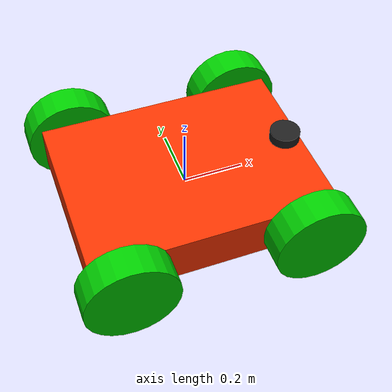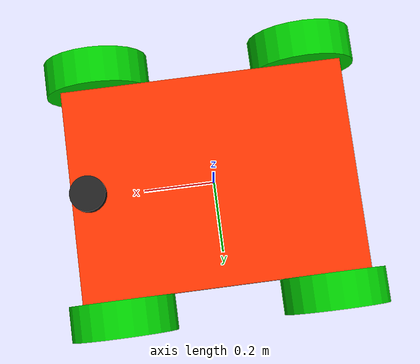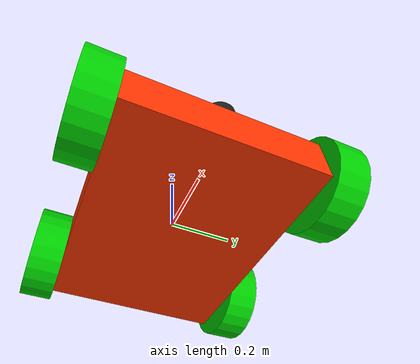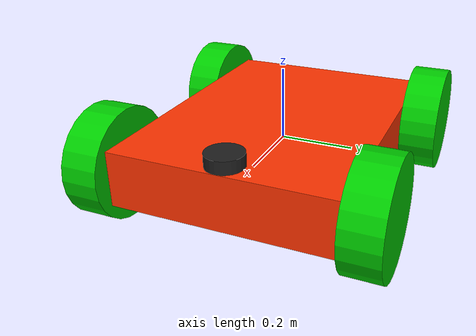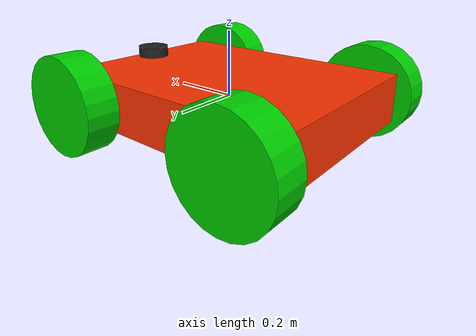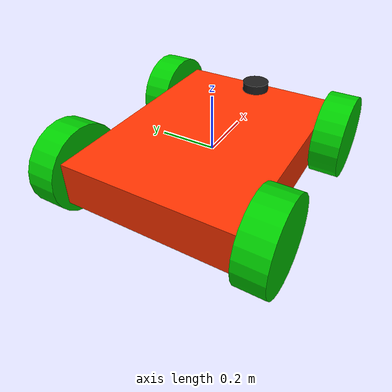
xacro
<?xml version = "1.0"?>
<robot name = "test" xmlns:xacro = "http://www.ros.org/wiki/xacro">

    <xacro:property name = "M_PI" value = "3.1415926"/>
    <xacro:property name = "base_mass" value="20"/>
    <xacro:property name = "base_box_length" value="0.8"/>
    <xacro:property name = "base_box_width" value="0.6"/>
    <xacro:property name = "base_box_height" value="0.15"/>
    <xacro:property name = "wheel_mass" value="1"/>
    <xacro:property name = "wheel_length" value="0.1"/>
    <xacro:property name = "wheel_radius" value="0.15"/>
    <!--定义轮子-->
    <xacro:macro name = "wheel_link" params="wheel_name length radius">
        <link name = "${wheel_name}">
            <visual>
                <origin xyz = "0 0 0 " rpy = "${M_PI/2} 0 0"/>
                <geometry>
                    <cylinder length = "${length}" radius = "${radius}" />
                </geometry>
                <material name = "green">
                    <color rgba = "0 0.8 0 1"/>
                </material>
            </visual>

            <collision>
                <origin xyz = "0 0 0 " rpy = "${M_PI/2} 0 0"/>
                <geometry>
                    <cylinder length = "${length}" radius = "${radius}" />
                </geometry>
                <material name = "green">
                    <color rgba = "0 0.8 0 1"/>
                </material>
            </collision>
            <inertial>
                <mass value = "${wheel_mass}"/>
                <origin xyz="0 0 0"/>
                <inertia ixx = "${0.1*wheel_mass*(3*wheel_radius*wheel_radius+wheel_length*wheel_length)}"
                         ixy = "0"
                         ixz = "0"
                         iyy = "${0.1*wheel_mass*(3*wheel_radius*wheel_radius+wheel_length*wheel_length)}"
                         iyz = "0"
                         izz = "${0.5*wheel_mass*wheel_radius*wheel_radius}"/>
            </inertial>

        </link>
        <gazebo reference = "${wheel_name}">
            <material>Gazebo/Black</material>
        </gazebo>

    </xacro:macro>

    <!--定义轮子的关节-->
    <xacro:macro name = "wheel_joint" params ="joint_name parent child x y z">
        <joint name = "${joint_name}" type = "continuous">
            <origin xyz = "${x} ${y} ${z}" rpy = "0 0 0"/>
            <parent link = "${parent}"/>
            <child link = "${child}"/>
            <axis xyz = "0 1 0"/>
        </joint>
        <!-- Transmission is important to link the joints and the controller -->
        <transmission name="${joint_name}_trans">
            <type>transmission_interface/SimpleTransmission</type>
            <joint name="{joint_name}" />
            <actuator name="{joint_name}_motor">
                <hardwareInterface>VelocityJointInterface</hardwareInterface>
                <mechanicalReduction>1</mechanicalReduction>
            </actuator>
        </transmission>

    </xacro:macro>

    <!--添加车轮及其关节-->
    <xacro:macro name = "add_wheel_link_joint" params = "wheel_name parent x_joint y_joint z_joint ">
        <wheel_link wheel_name = "${wheel_name}_link" length = "${wheel_length}" radius = "${wheel_radius}" />
        <wheel_joint joint_name = "${wheel_name}_joint" parent = "${parent}" child = "${wheel_name}_link" x="${x_joint}"
                     y="${y_joint}" z = "${z_joint}"/>

    </xacro:macro>

    <link name = "base_link">
        <visual>
            <origin xyz = "0 0 0" rpy = "0 0 0"/>
            <geometry>
                <box size = "${base_box_length} ${base_box_width} ${base_box_height}"/>
            </geometry>
            <material name = "red">
                <color rgba = "1 0.2 0 1"/>
            </material>
        </visual>

        <collision>
            <origin xyz = "0 0 0" rpy = "0 0 0"/>
            <geometry>
                <box size = "${base_box_length} ${base_box_width} ${base_box_height}"/>
            </geometry>
            <material name = "red">
                <color rgba = "1 0.2 0 1"/>
            </material>
        </collision>

        <inertial>
            <mass value = "${base_mass}"/>
            <origin xyz="0 0 0"/>
            <inertia ixx = "${0.1*base_mass*(base_box_height*base_box_height+base_box_length*base_box_length)}"
                     ixy = "0"
                     ixz = "0"
                     iyy = "${0.1*base_mass*(base_box_length*base_box_length+base_box_width*base_box_width)}"
                     iyz = "0"
                     izz = "${0.1*base_mass*(base_box_height*base_box_height+base_box_width*base_box_width)}"/>
        </inertial>
    </link>
    <gazebo reference = "base_link">
        <material>Gazebo/Blue</material>
    </gazebo>

    <add_wheel_link_joint wheel_name = "left_front_wheel" parent = "base_link" y_joint = "${base_box_width/2 + wheel_length/2}"
                          x_joint="${base_box_length/2 - 0.1}" z_joint="0"/>

    <add_wheel_link_joint wheel_name = "left_back_wheel" parent = "base_link" y_joint = "${base_box_width/2 + wheel_length/2}"
                          x_joint="${-base_box_length/2 + 0.1}" z_joint="0"/>

    <add_wheel_link_joint wheel_name = "right_front_wheel" parent = "base_link" y_joint = "${-base_box_width/2 - wheel_length/2}"
                          x_joint="${base_box_length/2 - 0.1}" z_joint="0"/>

    <add_wheel_link_joint wheel_name = "right_back_wheel" parent = "base_link" y_joint = "${-base_box_width/2 - wheel_length/2}"
                          x_joint="${-base_box_length/2 + 0.1}" z_joint="0"/>

    <gazebo reference="base_footprint">
        <turnGravityoff>false</turnGravityoff>
    </gazebo>

    <!-- controller -->
    <gazebo>
        <plugin name="skid_steer_drive_controller" filename="libgazebo_ros_skid_steer_drive.so">
            <updateRate>100.0</updateRate>
            <robotNamespace>/</robotNamespace>
            <leftFrontJoint>left_front_wheel_joint</leftFrontJoint>
            <rightFrontJoint>right_front_wheel_joint</rightFrontJoint>
            <leftRearJoint>left_back_wheel_joint</leftRearJoint>
            <rightRearJoint>right_back_wheel_joint</rightRearJoint>
            <wheelSeparation>${base_box_width}</wheelSeparation>
            <wheelDiameter>${2*wheel_radius}</wheelDiameter>
            <robotBaseFrame>base_link</robotBaseFrame>
            <torque>20</torque>
            <topicName>cmd_vel</topicName>
            <broadcastTF>true</broadcastTF>
        </plugin>
    </gazebo>

    <!--    添加相机-->
    <xacro:include filename="$(find learn_model)/urdf/rplidar.xacro" />

    <!-- Attach the Kinect -->
    <joint name="rplidar_joint" type="fixed">
        <origin xyz="${base_box_length/2-0.05} 0 ${base_box_height/2+0.01} " rpy="0 0 0" />
        <parent link="base_link"/>
        <child link="rplidar_link"/>
    </joint>

    <xacro:rplidar prefix="rplidar"/>

</robot>

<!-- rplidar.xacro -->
<robot xmlns:xacro="http://www.ros.org/wiki/xacro" name="laser">

    <xacro:macro name="rplidar" params="prefix">
        <!-- Create laser reference frame -->
        <link name="${prefix}_link">
            <inertial>
                <mass value="0.1" />
                <origin xyz="0 0 0" />
                <inertia ixx="0.01" ixy="0.0" ixz="0.0"
                         iyy="0.01" iyz="0.0"
                         izz="0.01" />
            </inertial>

            <visual>
                <origin xyz=" 0 0 0 " rpy="0 0 0" />
                <geometry>
                    <cylinder length="0.05" radius="0.05"/>
                </geometry>
                <material name="black"/>
            </visual>

            <collision>
                <origin xyz="0.0 0.0 0.0" rpy="0 0 0" />
                <geometry>
                    <cylinder length="0.06" radius="0.05"/>
                </geometry>
            </collision>
        </link>
        <gazebo reference="${prefix}_link">
            <material>Gazebo/Black</material>
        </gazebo>

        <gazebo reference="${prefix}_link">
            <sensor type="ray" name="rplidar">
                <pose>0 0 0 0 0 0</pose>
                <visualize>false</visualize>
                <update_rate>5.5</update_rate>
                <ray>
                    <scan>
                      <horizontal>
                        <samples>360</samples>
                        <resolution>1</resolution>
                        <min_angle>-3</min_angle>
                        <max_angle>3</max_angle>
                      </horizontal>
                    </scan>
                    <range>
                      <min>0.10</min>
                      <max>6.0</max>
                      <resolution>0.01</resolution>
                    </range>
                    <noise>
                      <type>gaussian</type>
                      <mean>0.0</mean>
                      <stddev>0.01</stddev>
                    </noise>
                </ray>
                <plugin name="gazebo_rplidar" filename="libgazebo_ros_laser.so">
                    <topicName>/scan</topicName>
                    <frameName>rplidar_link</frameName>
                </plugin>
            </sensor>
        </gazebo>

    </xacro:macro>
</robot>
